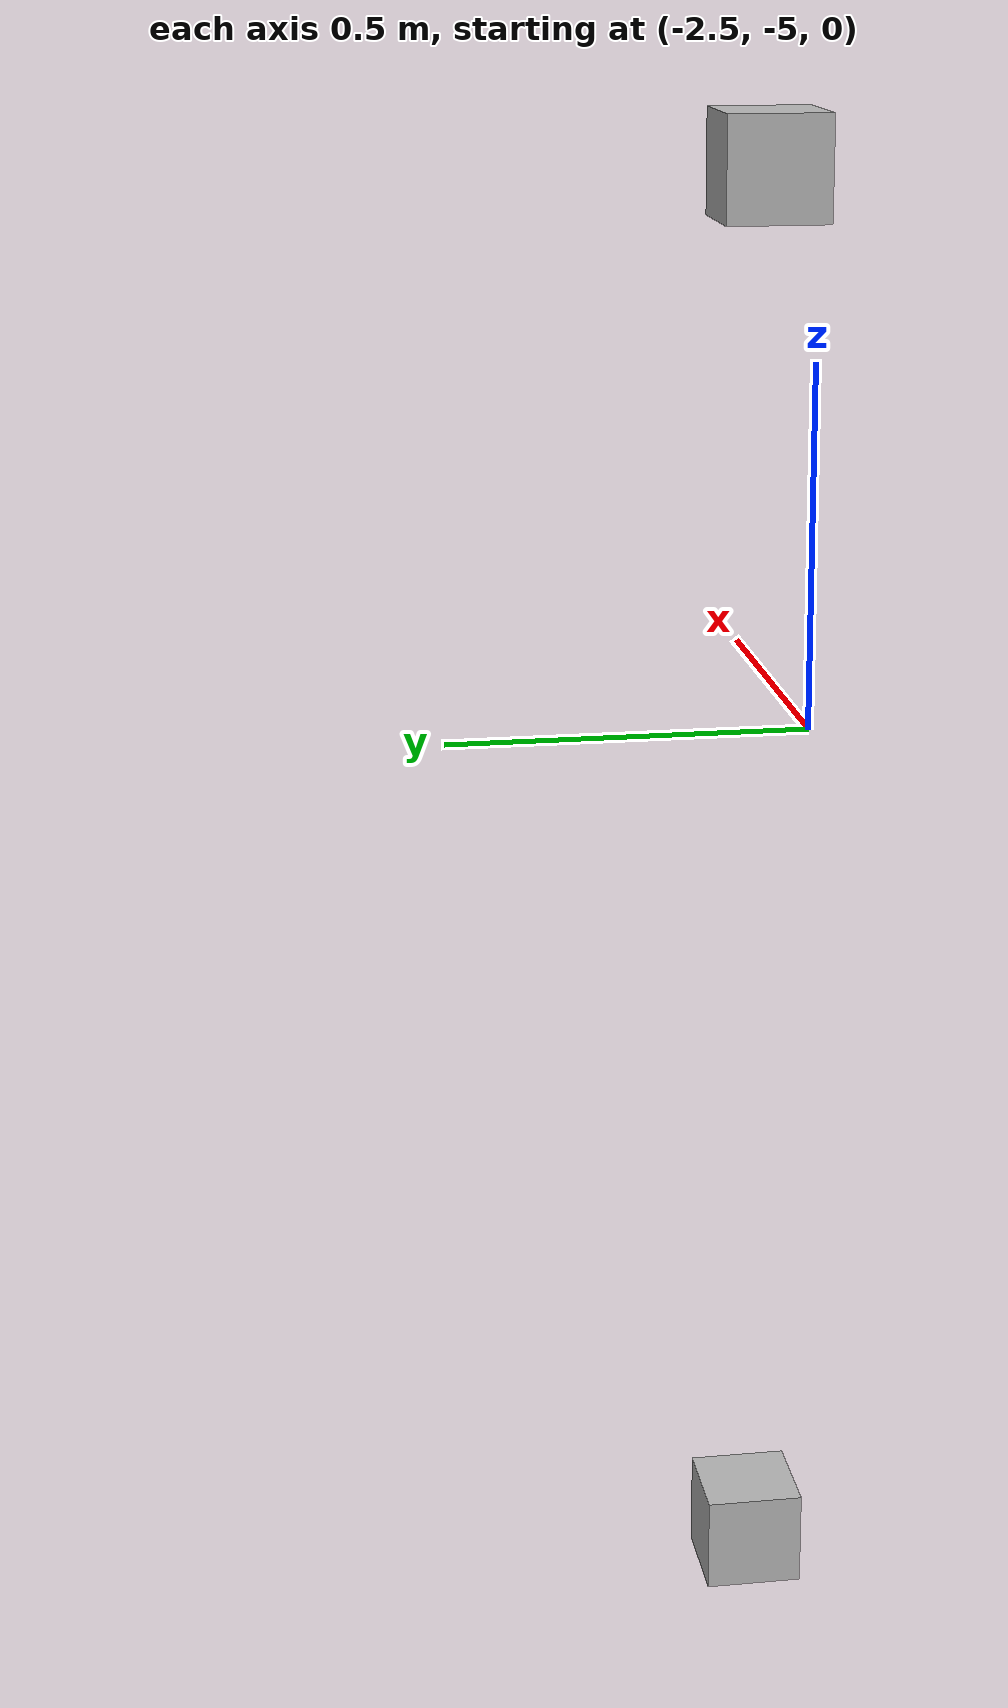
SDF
<sdf version="1.7">
 <world name="default">
  <model name="orthogonal_747_2.000.15_TS">
   <static>1</static>
   <link name="u_link_0_0_2">
    <inertial>
     <mass>1</mass>
     <inertia>
      <ixx>0.166667</ixx>
      <ixy>0</ixy>
      <ixz>0</ixz>
      <iyy>0.166667</iyy>
      <iyz>0</iyz>
      <izz>0.166667</izz>
     </inertia>
    </inertial>
    <pose>4.3 0 1.075 0 -0 0</pose>
    <visual name="visual_0">
     <laser_retro>57</laser_retro>
     <geometry><box><size>0.15 1e-06 0.15</size></box></geometry>
     <material>
      <script><name>Gazebo/Grey</name><uri>file://media/materials/scripts/gazebo.material</uri></script>
      <shader type="pixel"><normal_map>__default__</normal_map></shader>
      <ambient>0.678 0.498 0.659 1</ambient>
      <diffuse>0.7 0.7 0.7 1</diffuse>
      <specular>0.01 0.01 0.01 1</specular>
      <emissive>0 0 0 1</emissive>
     </material>
     <pose>0 -0.075 0 0 -0 0</pose>
     <transparency>1</transparency>
    </visual>
    <visual name="visual_1">
     <laser_retro>58</laser_retro>
     <geometry><box><size>0.15 1e-06 0.15</size></box></geometry>
     <material>
      <script><name>Gazebo/Grey</name><uri>file://media/materials/scripts/gazebo.material</uri></script>
      <shader type="pixel"><normal_map>__default__</normal_map></shader>
      <ambient>0.447 0.624 0.812 1</ambient>
      <diffuse>0.7 0.7 0.7 1</diffuse>
      <specular>0.01 0.01 0.01 1</specular>
      <emissive>0 0 0 1</emissive>
     </material>
     <pose>0 0.075 0 0 -0 0</pose>
     <transparency>1</transparency>
    </visual>
    <visual name="visual_2">
     <laser_retro>59</laser_retro>
     <geometry><box><size>0.15 0.15 1e-06</size></box></geometry>
     <material>
      <script><name>Gazebo/Grey</name><uri>file://media/materials/scripts/gazebo.material</uri></script>
      <shader type="pixel"><normal_map>__default__</normal_map></shader>
      <ambient>0.988 0.686 0.243 1</ambient>
      <diffuse>0.7 0.7 0.7 1</diffuse>
      <specular>0.01 0.01 0.01 1</specular>
      <emissive>0 0 0 1</emissive>
     </material>
     <pose>0 0 -0.075 0 -0 0</pose>
     <transparency>1</transparency>
    </visual>
    <visual name="visual_3">
     <laser_retro>60</laser_retro>
     <geometry><box><size>1e-06 0.15 0.15</size></box></geometry>
     <material>
      <script><name>Gazebo/Grey</name><uri>file://media/materials/scripts/gazebo.material</uri></script>
      <shader type="pixel"><normal_map>__default__</normal_map></shader>
      <ambient>0.988 0.914 0.31 1</ambient>
      <diffuse>0.7 0.7 0.7 1</diffuse>
      <specular>0.01 0.01 0.01 1</specular>
      <emissive>0 0 0 1</emissive>
     </material>
     <pose>0.075 0 0 0 -0 0</pose>
     <transparency>1</transparency>
    </visual>
    <visual name="visual_4">
     <laser_retro>61</laser_retro>
     <geometry><box><size>0.15 0.15 1e-06</size></box></geometry>
     <material>
      <script><name>Gazebo/Grey</name><uri>file://media/materials/scripts/gazebo.material</uri></script>
      <shader type="pixel"><normal_map>__default__</normal_map></shader>
      <ambient>0.937 0.161 0.161 1</ambient>
      <diffuse>0.7 0.7 0.7 1</diffuse>
      <specular>0.01 0.01 0.01 1</specular>
      <emissive>0 0 0 1</emissive>
     </material>
     <pose>0 0 0.075 0 -0 0</pose>
     <transparency>1</transparency>
    </visual>
    <visual name="visual_5">
     <laser_retro>62</laser_retro>
     <geometry><box><size>1e-06 0.15 0.15</size></box></geometry>
     <material>
      <script><name>Gazebo/Grey</name><uri>file://media/materials/scripts/gazebo.material</uri></script>
      <shader type="pixel"><normal_map>__default__</normal_map></shader>
      <ambient>0.541 0.886 0.204 1</ambient>
      <diffuse>0.7 0.7 0.7 1</diffuse>
      <specular>0.01 0.01 0.01 1</specular>
      <emissive>0 0 0 1</emissive>
     </material>
     <pose>-0.075 0 0 0 -0 0</pose>
     <transparency>1</transparency>
    </visual>
    <visual name="visual_texture">
     <geometry><box><size>0.149985 0.149985 0.149985</size></box></geometry>
     <material>
      <script>
       <uri>model://BASE_MODELS/simple_block_v2_textured/materials/scripts</uri>
       <uri>model://BASE_MODELS/simple_block_v2_textured/materials/textures</uri>
       <name>metal</name>
      </script>
     </material>
     <laser_retro>63</laser_retro>
    </visual>
    <collision name="collision">
     <geometry><box><size>0.15 0.15 0.15</size></box></geometry>
     <surface>
      <friction>
       <ode><mu>1</mu><mu2>1</mu2><fdir1>0 0 0</fdir1><slip1>0</slip1><slip2>0</slip2></ode>
       <torsional>
        <coefficient>1</coefficient>
        <patch_radius>0</patch_radius>
        <surface_radius>0</surface_radius>
        <use_patch_radius>1</use_patch_radius>
        <ode><slip>0</slip></ode>
       </torsional>
      </friction>
      <bounce><restitution_coefficient>0</restitution_coefficient><threshold>1e+06</threshold></bounce>
      <contact>
       <collide_without_contact>0</collide_without_contact>
       <collide_without_contact_bitmask>1</collide_without_contact_bitmask>
       <collide_bitmask>1</collide_bitmask>
       <ode>
        <soft_cfm>0</soft_cfm>
        <soft_erp>0.2</soft_erp>
        <kp>1e+13</kp>
        <kd>1</kd>
        <max_vel>0.01</max_vel>
        <min_depth>0</min_depth>
       </ode>
       <bullet>
        <split_impulse>1</split_impulse>
        <split_impulse_penetration_threshold>-0.01</split_impulse_penetration_threshold>
        <soft_cfm>0</soft_cfm>
        <soft_erp>0.2</soft_erp>
        <kp>1e+13</kp>
        <kd>1</kd>
       </bullet>
      </contact>
     </surface>
    </collision>
   </link>
   <link name="u_link_1_0_2">
    <inertial>
     <mass>1</mass>
     <inertia>
      <ixx>0.166667</ixx>
      <ixy>0</ixy>
      <ixz>0</ixz>
      <iyy>0.166667</iyy>
      <iyz>0</iyz>
      <izz>0.166667</izz>
     </inertia>
    </inertial>
    <pose>4.3 0 3.225 0 -0 0</pose>
    <visual name="visual_0">
     <laser_retro>820</laser_retro>
     <geometry><box><size>0.15 1e-06 0.15</size></box></geometry>
     <material>
      <script><name>Gazebo/Grey</name><uri>file://media/materials/scripts/gazebo.material</uri></script>
      <shader type="pixel"><normal_map>__default__</normal_map></shader>
      <ambient>0.678 0.498 0.659 1</ambient>
      <diffuse>0.7 0.7 0.7 1</diffuse>
      <specular>0.01 0.01 0.01 1</specular>
      <emissive>0 0 0 1</emissive>
     </material>
     <pose>0 -0.075 0 0 -0 0</pose>
     <transparency>1</transparency>
    </visual>
    <visual name="visual_1">
     <laser_retro>821</laser_retro>
     <geometry><box><size>0.15 1e-06 0.15</size></box></geometry>
     <material>
      <script><name>Gazebo/Grey</name><uri>file://media/materials/scripts/gazebo.material</uri></script>
      <shader type="pixel"><normal_map>__default__</normal_map></shader>
      <ambient>0.447 0.624 0.812 1</ambient>
      <diffuse>0.7 0.7 0.7 1</diffuse>
      <specular>0.01 0.01 0.01 1</specular>
      <emissive>0 0 0 1</emissive>
     </material>
     <pose>0 0.075 0 0 -0 0</pose>
     <transparency>1</transparency>
    </visual>
    <visual name="visual_2">
     <laser_retro>822</laser_retro>
     <geometry><box><size>0.15 0.15 1e-06</size></box></geometry>
     <material>
      <script><name>Gazebo/Grey</name><uri>file://media/materials/scripts/gazebo.material</uri></script>
      <shader type="pixel"><normal_map>__default__</normal_map></shader>
      <ambient>0.988 0.686 0.243 1</ambient>
      <diffuse>0.7 0.7 0.7 1</diffuse>
      <specular>0.01 0.01 0.01 1</specular>
      <emissive>0 0 0 1</emissive>
     </material>
     <pose>0 0 -0.075 0 -0 0</pose>
     <transparency>1</transparency>
    </visual>
    <visual name="visual_3">
     <laser_retro>823</laser_retro>
     <geometry><box><size>1e-06 0.15 0.15</size></box></geometry>
     <material>
      <script><name>Gazebo/Grey</name><uri>file://media/materials/scripts/gazebo.material</uri></script>
      <shader type="pixel"><normal_map>__default__</normal_map></shader>
      <ambient>0.988 0.914 0.31 1</ambient>
      <diffuse>0.7 0.7 0.7 1</diffuse>
      <specular>0.01 0.01 0.01 1</specular>
      <emissive>0 0 0 1</emissive>
     </material>
     <pose>0.075 0 0 0 -0 0</pose>
     <transparency>1</transparency>
    </visual>
    <visual name="visual_4">
     <laser_retro>824</laser_retro>
     <geometry><box><size>0.15 0.15 1e-06</size></box></geometry>
     <material>
      <script><name>Gazebo/Grey</name><uri>file://media/materials/scripts/gazebo.material</uri></script>
      <shader type="pixel"><normal_map>__default__</normal_map></shader>
      <ambient>0.937 0.161 0.161 1</ambient>
      <diffuse>0.7 0.7 0.7 1</diffuse>
      <specular>0.01 0.01 0.01 1</specular>
      <emissive>0 0 0 1</emissive>
     </material>
     <pose>0 0 0.075 0 -0 0</pose>
     <transparency>1</transparency>
    </visual>
    <visual name="visual_5">
     <laser_retro>825</laser_retro>
     <geometry><box><size>1e-06 0.15 0.15</size></box></geometry>
     <material>
      <script><name>Gazebo/Grey</name><uri>file://media/materials/scripts/gazebo.material</uri></script>
      <shader type="pixel"><normal_map>__default__</normal_map></shader>
      <ambient>0.541 0.886 0.204 1</ambient>
      <diffuse>0.7 0.7 0.7 1</diffuse>
      <specular>0.01 0.01 0.01 1</specular>
      <emissive>0 0 0 1</emissive>
     </material>
     <pose>-0.075 0 0 0 -0 0</pose>
     <transparency>1</transparency>
    </visual>
    <visual name="visual_texture">
     <geometry><box><size>0.149985 0.149985 0.149985</size></box></geometry>
     <material>
      <script>
       <uri>model://BASE_MODELS/simple_block_v2_textured/materials/scripts</uri>
       <uri>model://BASE_MODELS/simple_block_v2_textured/materials/textures</uri>
       <name>metal</name>
      </script>
     </material>
     <laser_retro>826</laser_retro>
    </visual>
    <collision name="collision">
     <geometry><box><size>0.15 0.15 0.15</size></box></geometry>
     <surface>
      <friction>
       <ode><mu>1</mu><mu2>1</mu2><fdir1>0 0 0</fdir1><slip1>0</slip1><slip2>0</slip2></ode>
       <torsional>
        <coefficient>1</coefficient>
        <patch_radius>0</patch_radius>
        <surface_radius>0</surface_radius>
        <use_patch_radius>1</use_patch_radius>
        <ode><slip>0</slip></ode>
       </torsional>
      </friction>
      <bounce><restitution_coefficient>0</restitution_coefficient><threshold>1e+06</threshold></bounce>
      <contact>
       <collide_without_contact>0</collide_without_contact>
       <collide_without_contact_bitmask>1</collide_without_contact_bitmask>
       <collide_bitmask>1</collide_bitmask>
       <ode>
        <soft_cfm>0</soft_cfm>
        <soft_erp>0.2</soft_erp>
        <kp>1e+13</kp>
        <kd>1</kd>
        <max_vel>0.01</max_vel>
        <min_depth>0</min_depth>
       </ode>
       <bullet>
        <split_impulse>1</split_impulse>
        <split_impulse_penetration_threshold>-0.01</split_impulse_penetration_threshold>
        <soft_cfm>0</soft_cfm>
        <soft_erp>0.2</soft_erp>
        <kp>1e+13</kp>
        <kd>1</kd>
       </bullet>
      </contact>
     </surface>
    </collision>
   </link>
   <pose>-6.47624 -5 -2.5 0 -0 0</pose>
  </model>
 </world>
</sdf>
